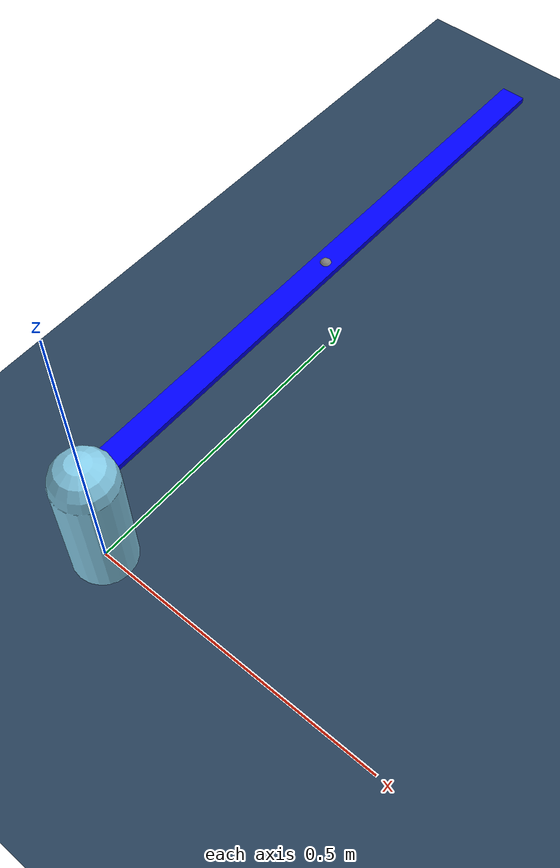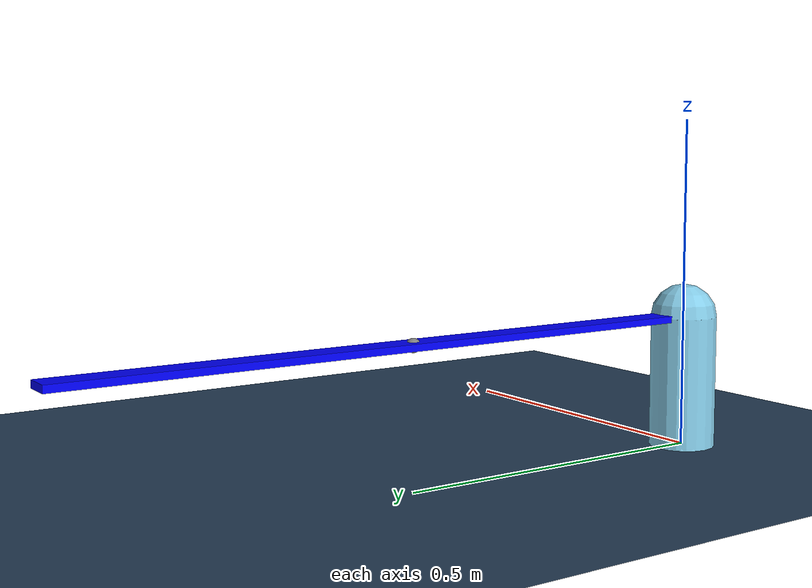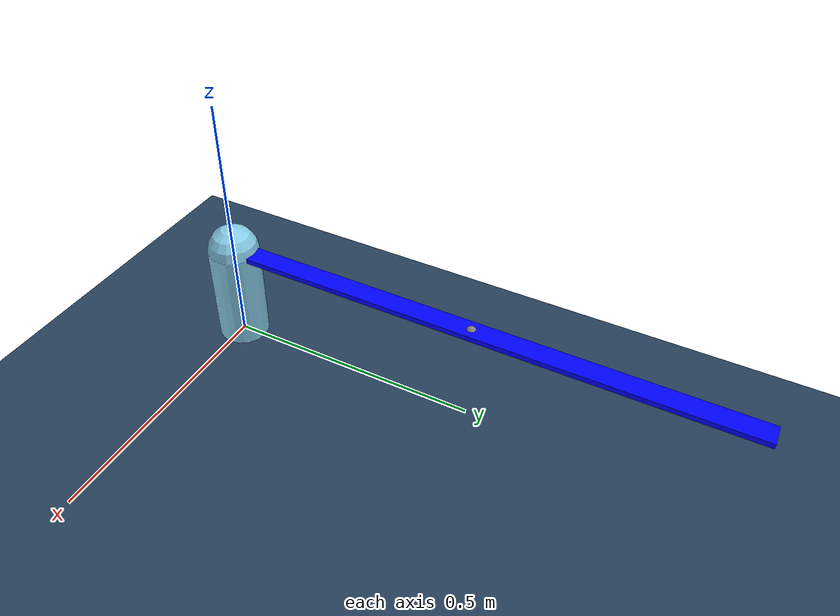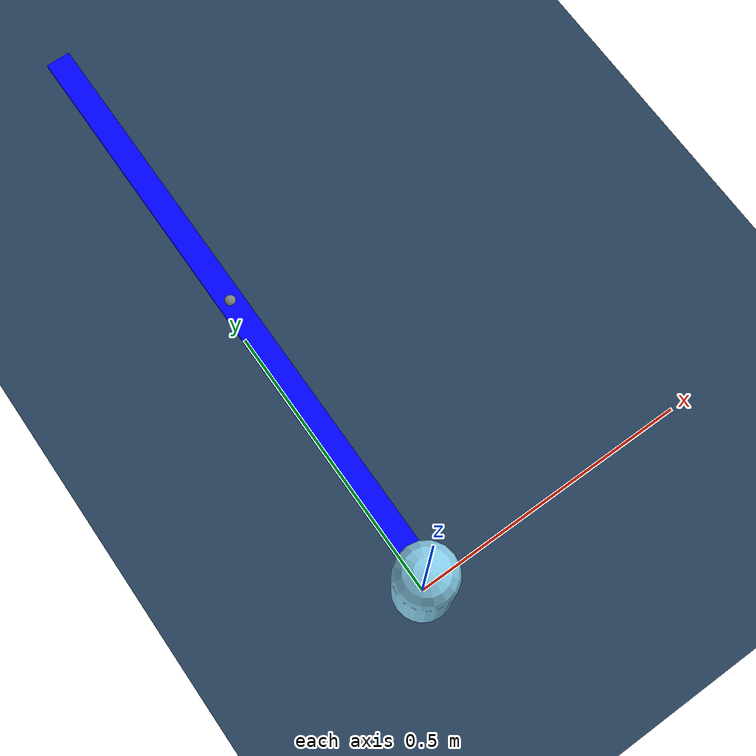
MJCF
<mujoco model="simple_joint">

    <asset>
    <texture name="grid" type="2d" builtin="checker" rgb1=".1 .2 .3"
    rgb2=".2 .3 .4" width="300" height="300" mark="edge" markrgb=".2 .3 .4"/>
    <material name="grid" texture="grid" texrepeat="2 2" texuniform="true"
    reflectance=".2"/>
  </asset>

    <compiler angle="degree"/>
    <option timestep="0.01"/>

    <worldbody>
        <light pos="0 0 1" mode="trackcom"/>
        <geom name="ground" type="plane" size="2 2 .1" material="grid" solimp=".99 .99 .01" solref=".001 1"/>
        <!-- 固定基座 -->
        <body name="base" pos="0 0 0">
            <body name="link">
                <joint name="hinge" type="hinge" axis="0 0 1" damping="2.0" frictionloss="1.0"/>
                <geom name="hinge" type="capsule" fromto="0 0 0 0 0 0.2" size="0.05" rgba="0.53 0.81 0.92 1"/>

                <body name="indicator" pos="0 0.5 0.2">
                    <geom name="indicator_geom" type="box" size="0.02 0.5 0.005" rgba="0 0 1 1"/>
                    <site name="indicator_site" pos="0 0 0" size="0.01"/>
                </body>
            </body>
        </body>

    </worldbody>

    <!-- 添加 actuator -->
    <actuator>
        <motor joint="hinge" ctrlrange="-500 500"/>
    </actuator>

    <sensor>
        <!-- 使用 site 测量力 -->
        <force name="indicator_force" site="indicator_site"/>

        <touch name="touch" site="indicator_site" />

    </sensor>

</mujoco>
